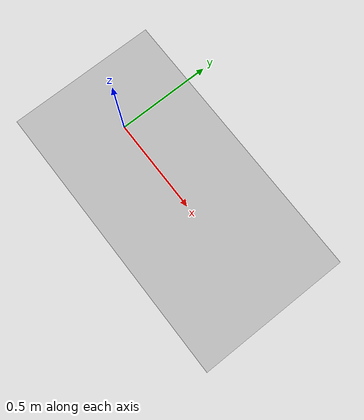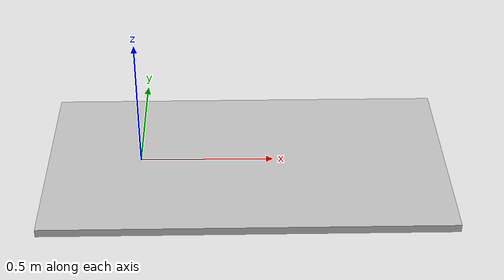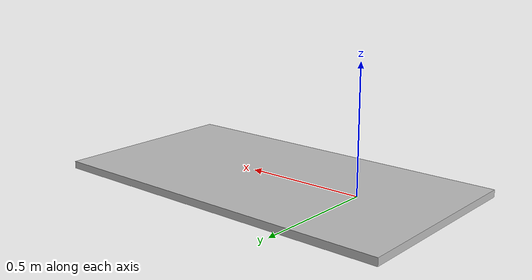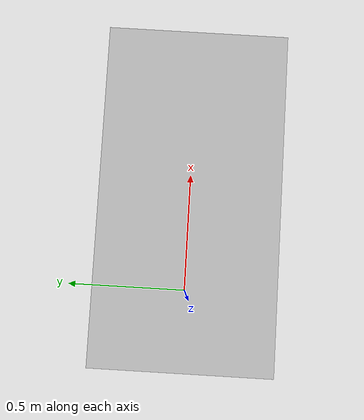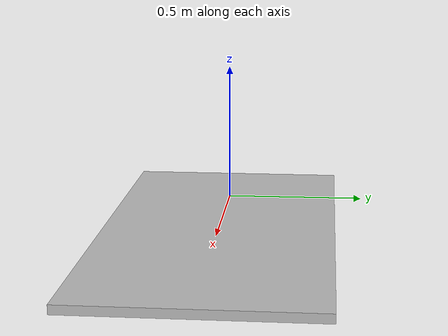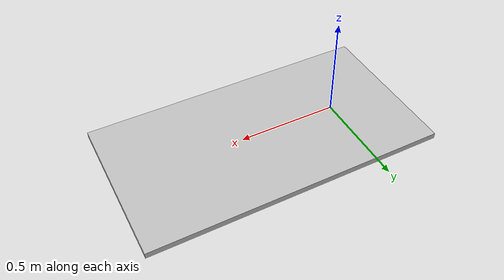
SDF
<?xml version="1.0"?>
<sdf version="1.9">
  <world name="table_world">

    <!-- 太阳光 -->
    <light type="directional" name="sun">
      <cast_shadows>true</cast_shadows>
      <pose>0 0 10 0 0 0</pose>
      <diffuse>1.0 1.0 1.0 1.0</diffuse>
      <specular>0.2 0.2 0.2 1.0</specular>
      <direction>-0.5 -0.5 -1.0</direction>
    </light>

    <!-- 完整桌子：1.5×0.8m 桌面 + 4腿，模型内顶面在 z=1.0，pose 下移让顶面平齐 z=0 -->
    <include>
      <uri>model://table</uri>
      <pose>0.4 0 -1.015 0 0 0</pose>
    </include>

  </world>
</sdf>

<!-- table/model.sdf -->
<sdf version="1.5">
  <model name="table">
    <static>true</static>
    <link name="link">
      <collision name="surface">
        <pose>0 0 1.0 0 0 0</pose>
        <geometry>
          <box>
            <size>1.5 0.8 0.03</size>
          </box>
        </geometry>
        <surface>
          <friction>
            <ode>
              <mu>0.6</mu>
              <mu2>0.6</mu2>
            </ode>
          </friction>
        </surface>
      </collision>
      <visual name="visual1">
        <pose>0 0 1.0 0 0 0</pose>
        <geometry>
          <box>
            <size>1.5 0.8 0.03</size>
          </box>
        </geometry>
        <material>
          <!-- 手写 Gazebo/Grey：精确匹配 -->
          <ambient>0.75 0.75 0.75 1</ambient>
          <diffuse>0.75 0.75 0.75 1</diffuse>
          <specular>0.18 0.18 0.18 1</specular>
          <shininess>24</shininess>
          <emissive>0 0 0 1</emissive>
        </material>
      </visual>

    </link>
  </model>
</sdf>
